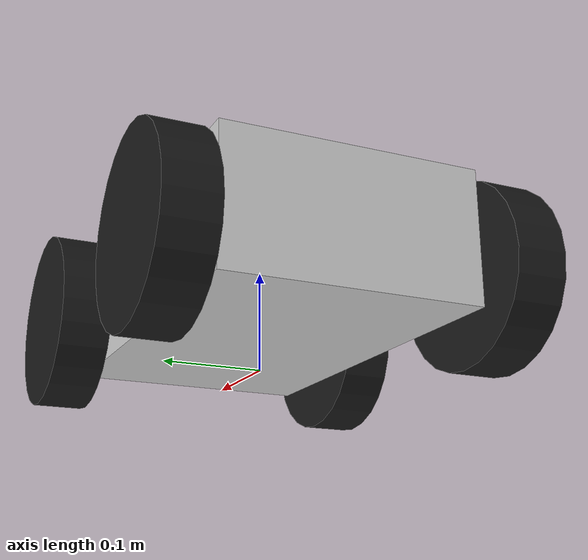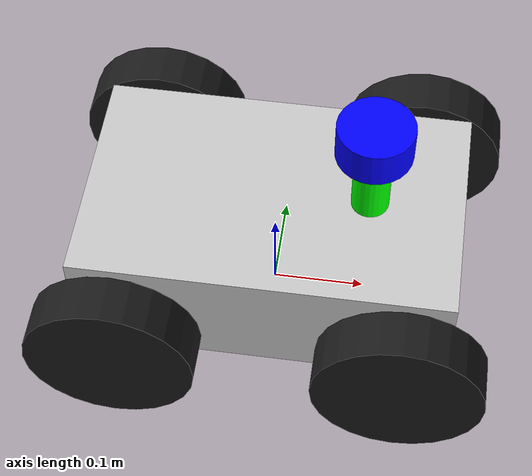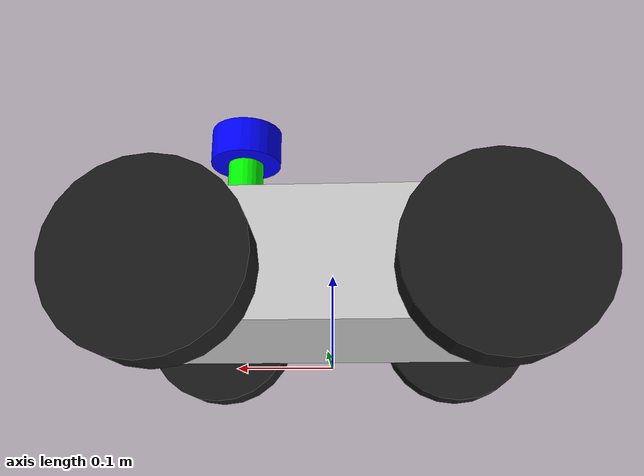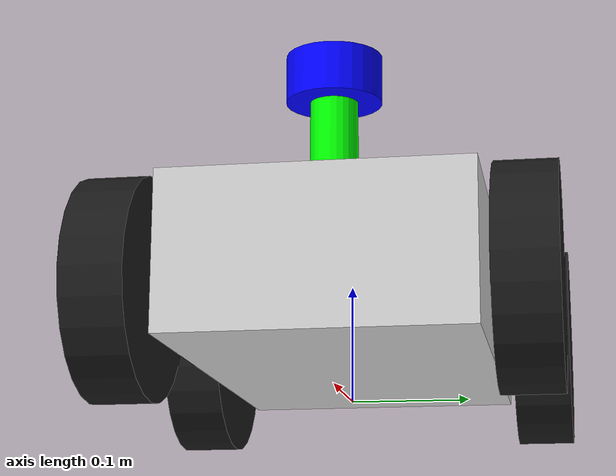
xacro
<?xml version="1.0"?>
<robot name="rover" xmlns:xacro="http://www.ros.org/wiki/xacro">

    <!-- ================= 1. 参数定义 ================= -->
    <xacro:property name="PI" value="3.1415926"/>

    <!-- 车身尺寸 -->
    <xacro:property name="body_len" value="0.4"/>
    <xacro:property name="body_width" value="0.25"/>
    <xacro:property name="body_height" value="0.13"/>

    <!-- 车轮尺寸 -->
    <xacro:property name="length_wheel" value="0.05"/>
    <xacro:property name="radius_wheel" value="0.09" />

    <!-- 轮子位置参数 -->
    <xacro:property name="wheel_offset_x" value="0.15"/>
    <xacro:property name="wheel_offset_y" value="0.16"/>

    <!-- 摩擦力 (后轮保持 0.2 提供抓地力，前轮后面单独设为 0) -->
    <xacro:property name="wheel_mu" value="0.2"/>

    <!-- ================= 2. 惯性矩阵计算 ================= -->
    <xacro:macro name="box_inertial" params="m x y z">
        <inertial>
            <mass value="${m}"/>
            <inertia ixx="${m*(y*y+z*z)/12}" ixy="0" ixz="0"
                     iyy="${m*(x*x+z*z)/12}" iyz="0"
                     izz="${m*(x*x+y*y)/12}" />
        </inertial>
    </xacro:macro>

    <xacro:macro name="cylinder_inertial" params="m r h">
        <inertial>
            <mass value="${m}"/>
            <inertia ixx="${m*(3*r*r+h*h)/12}" ixy="0" ixz="0"
                     iyy="${m*(3*r*r+h*h)/12}" iyz="0"
                     izz="${m*r*r/2}" />
        </inertial>
    </xacro:macro>

    <!-- ================= 3. 机器人主体 ================= -->
    <link name="base_footprint">
        <visual>
            <geometry><box size="0.001 0.001 0.001"/></geometry>
            <origin rpy="0 0 0" xyz="0 0 0"/>
        </visual>
        <xacro:box_inertial m="5.0" x="0.001" y="0.001" z="0.001"/>
    </link>

    <joint name="base_footprint_joint" type="fixed">
        <origin xyz="0 0 0.09" />
        <parent link="base_footprint" />
        <child link="base_link" />
    </joint>

    <link name="base_link">
        <visual>
            <geometry><box size="${body_len} ${body_width} ${body_height}"/></geometry>
            <origin rpy="0 0 0" xyz="0 0 0"/>
            <material name="white"><color rgba="0.8 0.8 0.8 1"/></material>
        </visual>
        <collision>
            <geometry><box size="${body_len} ${body_width} ${body_height}"/></geometry>
            <origin rpy="0 0 0" xyz="0 0 0"/>
        </collision>
        <xacro:box_inertial m="5.0" x="${body_len}" y="${body_width}" z="${body_height}"/>
    </link>

    <!-- ================= 4. 四个轮子 ================= -->

    <!-- [1] 前左轮 (Front Left) - 从动轮 -->
    <link name="wheel_FL">
        <visual>
            <geometry>
                <cylinder length="${length_wheel}" radius="${radius_wheel}"/>
            </geometry>
            <origin rpy="0 0 0" xyz="0 0 0"/>
            <material name="black"><color rgba="0.1 0.1 0.1 1"/></material>
        </visual>
        <collision>
            <geometry><cylinder length="${length_wheel}" radius="${radius_wheel}"/></geometry>
            <origin rpy="0 0 0" xyz="0 0 0"/>
        </collision>
        <xacro:cylinder_inertial m="0.5" r="${radius_wheel}" h="${length_wheel}"/>
    </link>

    <joint name="joint_FL" type="continuous">
        <parent link="base_link"/>
        <child link="wheel_FL"/>
        <origin rpy="${-PI/2} 0 0" xyz="${wheel_offset_x} ${wheel_offset_y} -0.02"/>
        <axis xyz="0 0 1" />
    </joint>

    <!-- [2] 前右轮 (Front Right) - 从动轮 -->
    <link name="wheel_FR">
        <visual>
            <geometry><cylinder length="${length_wheel}" radius="${radius_wheel}"/></geometry>
            <origin rpy="0 0 0" xyz="0 0 0"/>
            <material name="black"><color rgba="0.1 0.1 0.1 1"/></material>
        </visual>
        <collision>
            <geometry><cylinder length="${length_wheel}" radius="${radius_wheel}"/></geometry>
            <origin rpy="0 0 0" xyz="0 0 0"/>
        </collision>
        <xacro:cylinder_inertial m="0.5" r="${radius_wheel}" h="${length_wheel}"/>
    </link>

    <joint name="joint_FR" type="continuous">
        <parent link="base_link"/>
        <child link="wheel_FR"/>
        <origin rpy="${-PI/2} 0 0" xyz="${wheel_offset_x} -${wheel_offset_y} -0.02"/>
        <axis xyz="0 0 1" />
    </joint>

    <!-- [3] 后左轮 (Rear Left) - 驱动轮 -->
    <link name="wheel_RL">
        <visual>
            <geometry><cylinder length="${length_wheel}" radius="${radius_wheel}"/></geometry>
            <origin rpy="0 0 0" xyz="0 0 0"/>
            <material name="black"><color rgba="0.1 0.1 0.1 1"/></material>
        </visual>
        <collision>
            <geometry><cylinder length="${length_wheel}" radius="${radius_wheel}"/></geometry>
            <origin rpy="0 0 0" xyz="0 0 0"/>
        </collision>
        <mu1>${wheel_mu}</mu1>
        <mu2>${wheel_mu}</mu2>
        <xacro:cylinder_inertial m="0.5" r="${radius_wheel}" h="${length_wheel}"/>
    </link>

    <joint name="joint_RL" type="continuous">
        <parent link="base_link"/>
        <child link="wheel_RL"/>
        <origin rpy="${-PI/2} 0 0" xyz="-${wheel_offset_x} ${wheel_offset_y} -0.02"/>
        <axis xyz="0 0 1" />
    </joint>

    <!-- [4] 后右轮 (Rear Right) - 驱动轮 -->
    <link name="wheel_RR">
        <visual>
            <geometry><cylinder length="${length_wheel}" radius="${radius_wheel}"/></geometry>
            <origin rpy="0 0 0" xyz="0 0 0"/>
            <material name="black"><color rgba="0.1 0.1 0.1 1"/></material>
        </visual>
        <collision>
            <geometry><cylinder length="${length_wheel}" radius="${radius_wheel}"/></geometry>
            <origin rpy="0 0 0" xyz="0 0 0"/>
        </collision>
        <mu1>${wheel_mu}</mu1>
        <mu2>${wheel_mu}</mu2>
        <xacro:cylinder_inertial m="0.5" r="${radius_wheel}" h="${length_wheel}"/>
    </link>

    <joint name="joint_RR" type="continuous">
        <parent link="base_link"/>
        <child link="wheel_RR"/>
        <origin rpy="${-PI/2} 0 0" xyz="-${wheel_offset_x} -${wheel_offset_y} -0.02"/>
        <axis xyz="0 0 1" />
    </joint>

    <!-- ================= 5. 传感器 ================= -->
    <!-- 1. 雷达支架 (Link + Joint) -->
    <link name="laserholder_link">
        <visual>
            <geometry><cylinder length="0.1" radius="0.02"/></geometry>
            <material name="green"><color rgba="0 1 0 1"/></material>
            <origin rpy="0 0 0" xyz="0 0 0.05"/>
        </visual>
        <xacro:box_inertial m="0.01" x="0.02" y="0.02" z="0.1"/>
    </link>

    <joint name="laserholder_joint" type="fixed">
        <origin xyz="0.1 0.0 0.065" rpy="0 0 0"/>
        <parent link="base_link"/>
        <child link="laserholder_link"/>
    </joint>

    <!-- 2. 雷达本体 (Link + Joint) -->
    <link name="scan_link">
        <visual>
            <geometry><cylinder length="0.04" radius="0.04"/></geometry>
            <material name="blue"><color rgba="0 0 1 1"/></material>
        </visual>
        <xacro:cylinder_inertial m="0.1" r="0.04" h="0.04"/>
    </link>

    <joint name="laser_joint" type="fixed">
        <origin xyz="0.0 0.0 0.1" rpy="0 0 0"/> <!-- 装在支架顶上 -->
        <parent link="laserholder_link"/>
        <child link="scan_link"/>
    </joint>

    <!-- 3. 雷达 Gazebo 插件  -->
    <gazebo reference="scan_link">
        <sensor name="lidar" type="ray">
            <always_on>true</always_on>
            <visualize>true</visualize>
            <update_rate>10</update_rate>
            <ray>
                <scan>
                    <horizontal>
                        <samples>360</samples>
                        <resolution>1.000000</resolution>
                        <min_angle>0.000000</min_angle>
                        <max_angle>6.280000</max_angle>
                    </horizontal>
                </scan>
                <range>
                    <min>0.120000</min>
                    <max>10.0</max>
                    <resolution>0.02</resolution>
                </range>
                <noise>
                    <type>gaussian</type>
                    <mean>0.0</mean>
                    <stddev>0.01</stddev>
                </noise>
            </ray>
            <plugin name="scan" filename="libgazebo_ros_ray_sensor.so">
                <ros>
                    <remapping>~/out:=scan</remapping>
                </ros>
                <output_type>sensor_msgs/LaserScan</output_type>
                <frame_name>scan_link</frame_name>
            </plugin>
        </sensor>
    </gazebo>

    <!-- ================= 6. Gazebo 物理属性 & 插件 ================= -->

    <gazebo reference="wheel_FL">
        <mu1>0.5</mu1>
        <mu2>0.001</mu2>
        <material>Gazebo/Black</material>
    </gazebo>
    <gazebo reference="wheel_FR">
        <mu1>0.5</mu1>
        <mu2>0.001</mu2>
        <material>Gazebo/Black</material>
    </gazebo>

    <gazebo reference="wheel_RL"><material>Gazebo/Black</material></gazebo>
    <gazebo reference="wheel_RR"><material>Gazebo/Black</material></gazebo>
    <gazebo reference="base_link"><material>Gazebo/White</material></gazebo>

    <!-- 驱动插件 -->
    <gazebo>
        <plugin name='diff_drive' filename='libgazebo_ros_diff_drive.so'>
            <ros>
                <namespace>/</namespace>
                <remapping>cmd_vel:=cmd_vel</remapping>
                <remapping>odom:=odom</remapping>
            </ros>

            <left_joint>joint_RL</left_joint>
            <right_joint>joint_RR</right_joint>

            <wheel_separation>${wheel_offset_y * 2}</wheel_separation>
            <wheel_diameter>${radius_wheel * 2}</wheel_diameter>

            <max_wheel_torque>200</max_wheel_torque>
            <max_wheel_acceleration>5.0</max_wheel_acceleration>

            <publish_odom>true</publish_odom>
            <publish_odom_tf>true</publish_odom_tf>
            <publish_wheel_tf>true</publish_wheel_tf>

            <odometry_frame>odom</odometry_frame>
            <robot_base_frame>base_footprint</robot_base_frame>
        </plugin>
    </gazebo>

    <gazebo>
        <plugin name="joint_state_publisher" filename="libgazebo_ros_joint_state_publisher.so">
            <ros>
                <!-- 必须重映射到标准的 /joint_states 话题 -->
                <remapping>~/out:=joint_states</remapping>
            </ros>
            <update_rate>30</update_rate>

            <joint_name>joint_FL</joint_name>
            <joint_name>joint_FR</joint_name>
            <joint_name>joint_RL</joint_name>
            <joint_name>joint_RR</joint_name>
        </plugin>
    </gazebo>

</robot>
